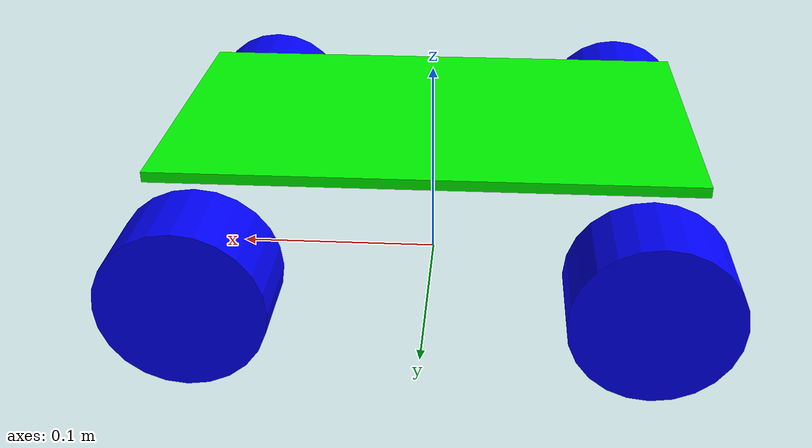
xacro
<?xml version="1.0"?>
<robot name="robot" xmlns:xacro="http://wiki.ros.org/xacro">

  <xacro:arg name="robot_type" default="omni"/>

  <xacro:property name="type" value="$(arg robot_type)" />

  <xacro:include filename="$(find haruto_description)/urdf/base.xacro"/>
  <xacro:include filename="$(find haruto_description)/urdf/pillar.xacro"/>
  <xacro:include filename="$(find haruto_description)/urdf/motor.xacro"/>
  <xacro:include filename="$(find haruto_description)/urdf/lidar.xacro"/>
  <xacro:include filename="$(find haruto_description)/urdf/wheel.xacro"/>

  <link name="world_link" />

  <xacro:robot_base parent="world_link" child="first_base_link" xyz="0 0 0.075" rpy="0 0 0" />

  <xacro:wheel parent="first_base_link" child="front_left_wheel_link" xyz="0.10 0.10 -0.04" rpy="1.57 0 0" robot_type="$(arg robot_type)" />
  <xacro:wheel parent="first_base_link" child="front_right_wheel_link" xyz="0.10 -0.10 -0.04" rpy="1.57 0 0" robot_type="$(arg robot_type)" />
  <xacro:wheel parent="first_base_link" child="back_left_wheel_link" xyz="-0.10 0.10 -0.04" rpy="1.57 0 0" robot_type="$(arg robot_type)" />
  <xacro:wheel parent="first_base_link" child="back_right_wheel_link" xyz="-0.10 -0.10 -0.04" rpy="1.57 0 0" robot_type="$(arg robot_type)" />

  <xacro:if value="${type == 'omni'}">
    <gazebo>
      <plugin name="object_controller" filename="libgazebo_ros_planar_move.so">
        <ros>
          <argument>odom:=odom/unfiltered</argument>
        </ros>
        <command_topic>cmd_vel</command_topic>
        <odometry_topic>odom/unfiltered</odometry_topic>
        <odometry_frame>odom</odometry_frame>
        <odometry_rate>20.0</odometry_rate>
        <robot_base_frame>world_link</robot_base_frame>
        <publish_odom>true</publish_odom>
        <publish_odom_tf>true</publish_odom_tf>
      </plugin>
    </gazebo>
  </xacro:if>

  <xacro:if value="${type == 'diff'}">
   <gazebo>
      <plugin name="skid_steer_drive" filename="libgazebo_ros_diff_drive.so">

         <num_wheel_pairs>2</num_wheel_pairs>

        <left_joint>front_left_motor_link_to_front_left_wheel_link_joint</left_joint>
        <right_joint>front_right_motor_link_to_front_right_wheel_link_joint</right_joint>
        <left_joint>back_left_motor_link_to_back_left_wheel_link_joint</left_joint>
        <right_joint>back_right_motor_link_to_back_right_wheel_link_joint</right_joint>

        <wheel_separation>0.215</wheel_separation>
        <wheel_separation>0.215</wheel_separation>

        <wheel_diameter>0.035</wheel_diameter>
        <wheel_diameter>0.035</wheel_diameter>

        <max_wheel_torque>50</max_wheel_torque>
        <max_wheel_acceleration>10.0</max_wheel_acceleration>

        <odometry_frame>odom</odometry_frame>
        <robot_base_frame>world_link</robot_base_frame>

        <publish_odom>true</publish_odom>
        <publish_odom_tf>true</publish_odom_tf>
        <publish_wheel_tf>true</publish_wheel_tf>
      </plugin>
     </gazebo>
  </xacro:if>

</robot>

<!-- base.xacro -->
<robot xmlns:xacro="http://wiki.ros.org/xacro">

  <xacro:macro name="robot_base" params="parent child xyz rpy">

    <link name="${child}">
      <visual>
        <geometry>
          <box size="0.25 0.15 0.005" />
        </geometry>
        <material name="green">
          <color rgba="0.0 1 0.0 1" />
        </material>
      </visual>
      <collision>
        <geometry>
          <box size="0.25 0.15 0.005" />
        </geometry>
      </collision>
      <inertial>
        <mass value="0.5" />
        <inertia ixx="0.015" ixy="0" ixz="0" iyy="0.0375" iyz="0.0" izz="0.0275" />
      </inertial>
    </link>

    <joint name="${parent}_to_${child}_joint" type="fixed">
      <origin xyz="${xyz}" rpy="${rpy}" />
      <parent link="${parent}" />
      <child link="${child}" />
    </joint>

  </xacro:macro>
</robot>

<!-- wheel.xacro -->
<robot xmlns:xacro="http://wiki.ros.org/xacro">

  <xacro:macro name="wheel" params="parent child xyz rpy robot_type">

    <link name="${child}">
      <visual>
        <geometry>
          <cylinder radius="0.0375" length="0.04"/>
        </geometry>
        <material name="blue">
          <color rgba="0.0 0.0 1 1" />
        </material>
      </visual>
      <collision>
        <geometry>
          <cylinder radius="0.0375" length="0.04"/>
        </geometry>
      </collision>
      <inertial>
        <mass value="0.1" />
        <inertia ixx="0.015" ixy="0" ixz="0" iyy="0.0375" iyz="0.0" izz="0.0275" />
      </inertial>
    </link>

    <xacro:if value="${robot_type == 'omni'}">
      <joint name="${parent}_to_${child}_joint" type="fixed">
        <axis xyz="0.0 0.0 1"/>
        <origin xyz="${xyz}" rpy="${rpy}" />
        <parent link="${parent}" />
        <child link="${child}" />
      </joint>
    </xacro:if>

    <xacro:if value="${robot_type == 'diff'}">
      <joint name="${parent}_to_${child}_joint" type="continuous">
        <axis xyz="0.0 0.0 1"/>
        <origin xyz="${xyz}" rpy="${rpy}" />
        <parent link="${parent}" />
        <child link="${child}" />
      </joint>
    </xacro:if>

  </xacro:macro>

</robot>
